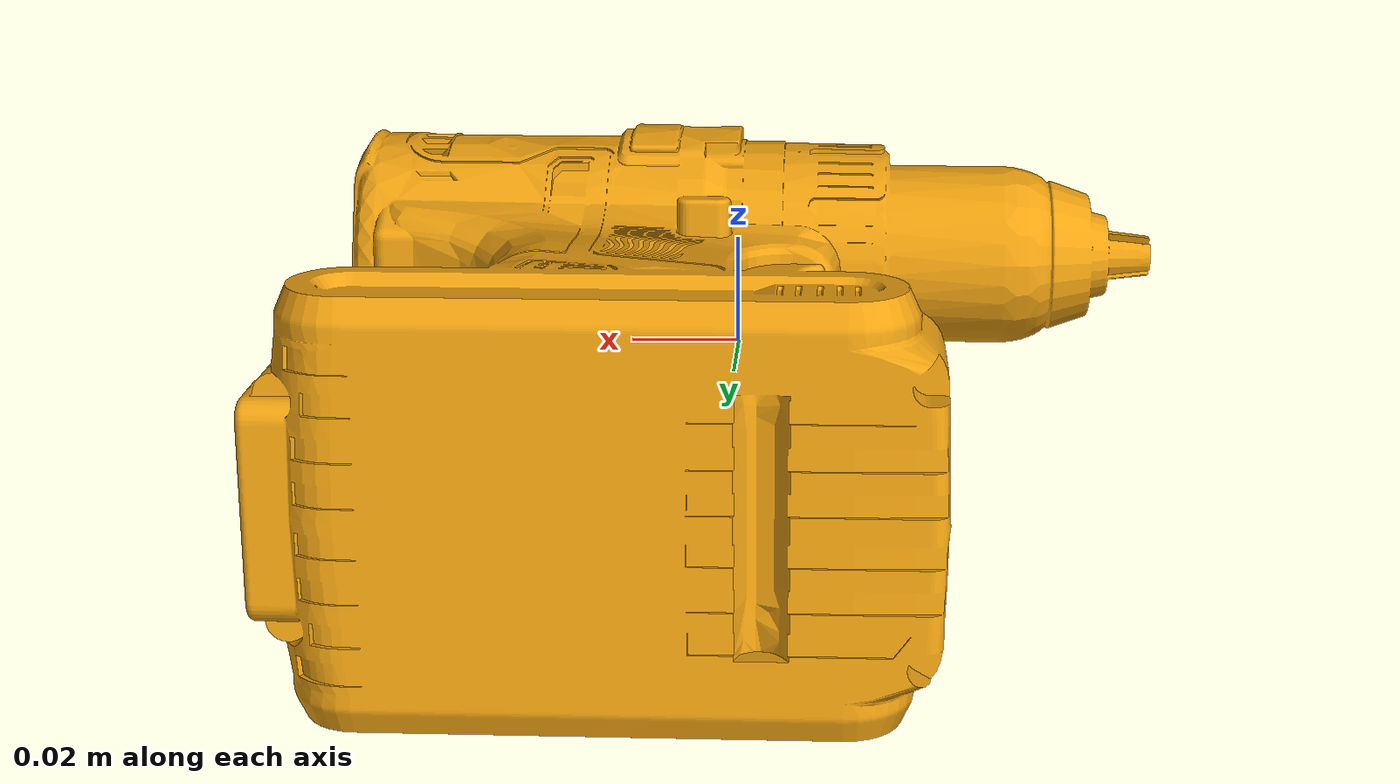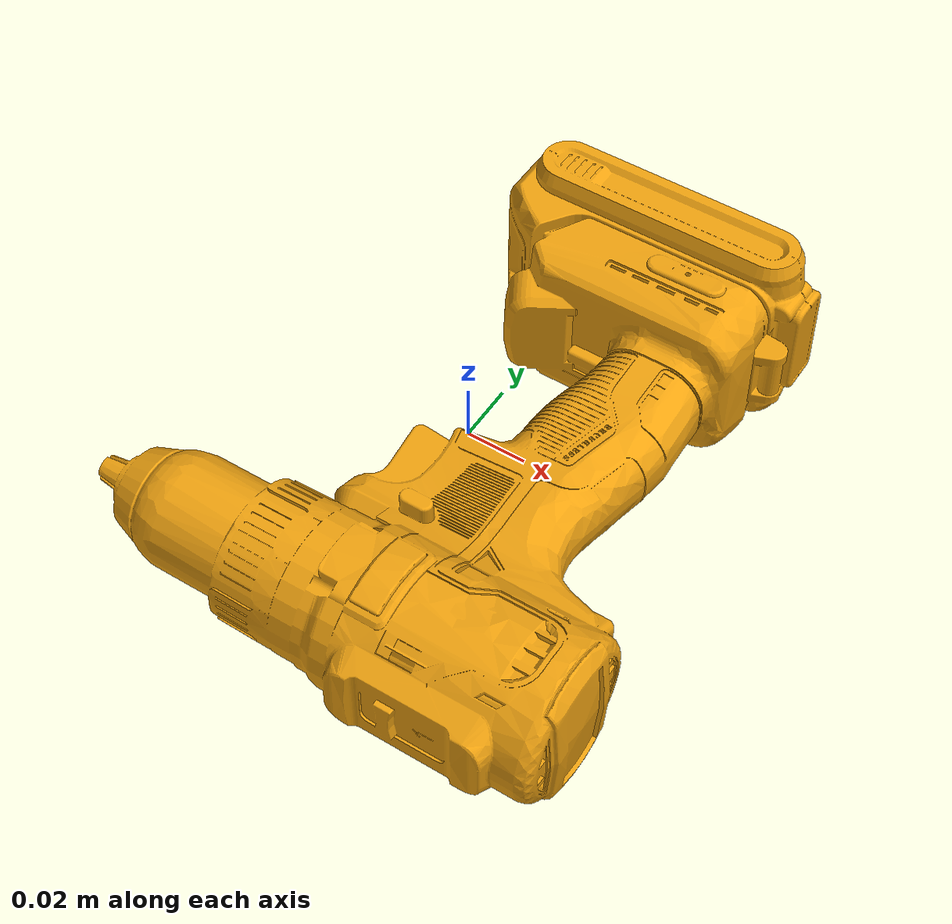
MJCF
<mujoco model="drill">
  <compiler meshdir="meshes" angle="radian"/>
  <default>
    <default class="visual"><geom contype="0" conaffinity="0" group="2" density="0" rgba="0.93 0.63 0.06 1"/></default>
    <default class="collision"><geom group="3"/></default>
  </default>
  <asset>
    <mesh name="drill_visual" file="drill_visual.obj"/>
    <mesh name="drill_hull0" file="drill_hull0.obj"/>
    <mesh name="drill_hull1" file="drill_hull1.obj"/>
    <mesh name="drill_hull2" file="drill_hull2.obj"/>
    <mesh name="drill_hull3" file="drill_hull3.obj"/>
    <mesh name="drill_hull4" file="drill_hull4.obj"/>
    <mesh name="drill_hull5" file="drill_hull5.obj"/>
    <mesh name="drill_hull6" file="drill_hull6.obj"/>
    <mesh name="drill_hull7" file="drill_hull7.obj"/>
  </asset>
  <worldbody>
    <body name="object" pos="0 0 0">
      <freejoint name="object_free"/>
      <geom type="mesh" mesh="drill_visual" class="visual"/>
      <geom type="mesh" mesh="drill_hull0" class="collision"/>
      <geom type="mesh" mesh="drill_hull1" class="collision"/>
      <geom type="mesh" mesh="drill_hull2" class="collision"/>
      <geom type="mesh" mesh="drill_hull3" class="collision"/>
      <geom type="mesh" mesh="drill_hull4" class="collision"/>
      <geom type="mesh" mesh="drill_hull5" class="collision"/>
      <geom type="mesh" mesh="drill_hull6" class="collision"/>
      <geom type="mesh" mesh="drill_hull7" class="collision"/>
    </body>
  </worldbody>
</mujoco>
